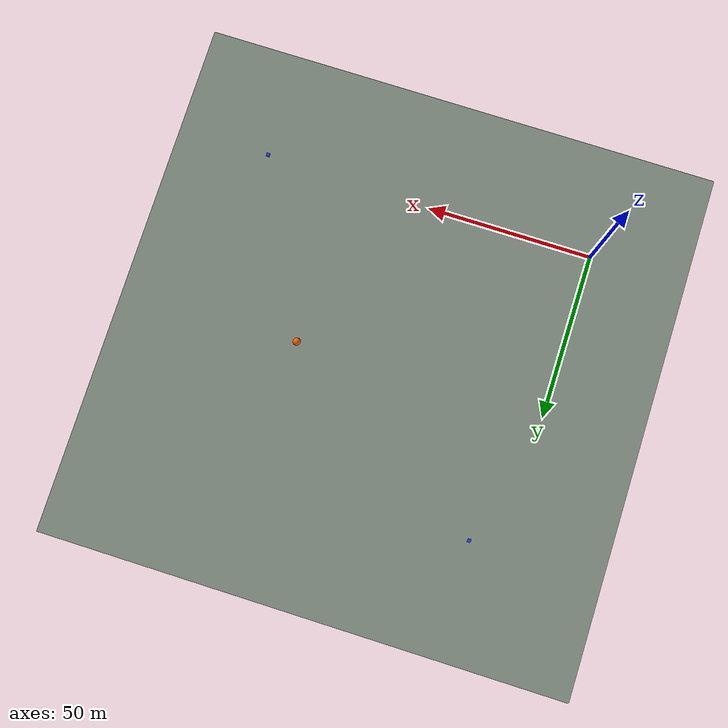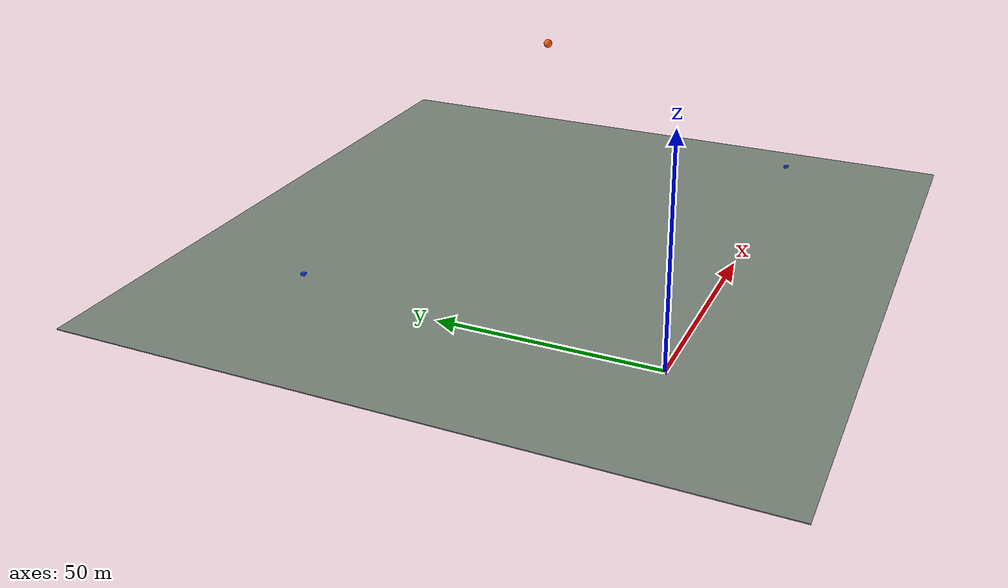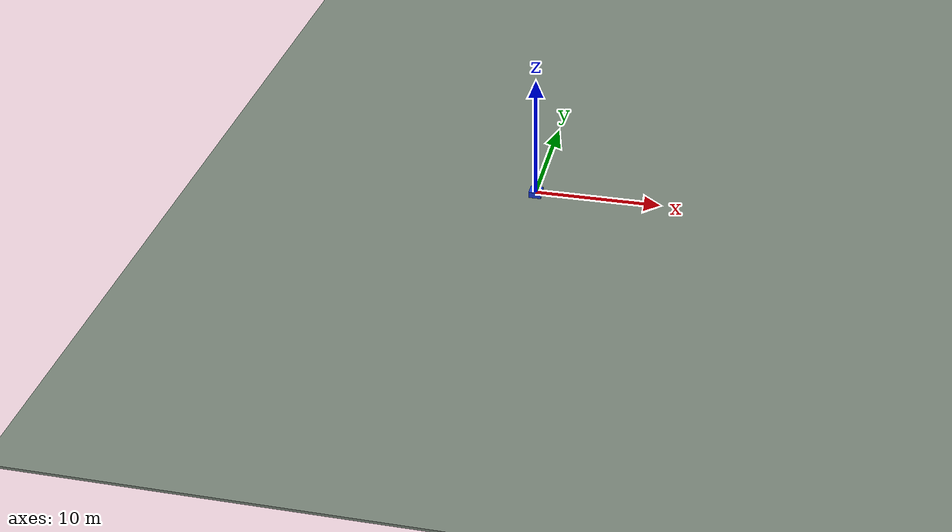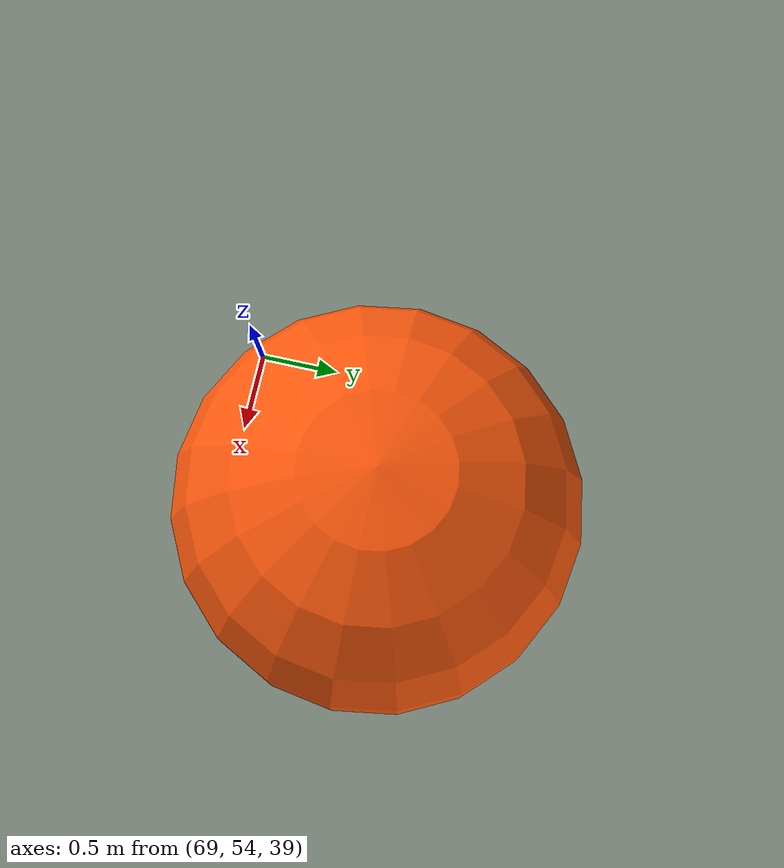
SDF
<?xml version='1.0' encoding='utf-8'?>
<sdf version="1.9">
  <world name="gazebo_offline">
    <physics name="fixed_step" type="ignored">
      <max_step_size>0.001</max_step_size>
      <real_time_factor>1.0</real_time_factor>
    </physics>
    <plugin filename="gz-sim-physics-system" name="gz::sim::systems::Physics" />
    <plugin filename="gz-sim-user-commands-system" name="gz::sim::systems::UserCommands" />
    <plugin filename="gz-sim-scene-broadcaster-system" name="gz::sim::systems::SceneBroadcaster" />
    <light type="directional" name="sun">
      <pose>0 0 100 0 0 0</pose>
      <direction>-0.5 0.1 -0.9</direction>
    </light>
    <model name="ground">
      <static>true</static>
      <pose>50 45 -3.2 0 0 0</pose>
      <link name="body">
        <visual name="visible">
          <geometry>
            <box>
              <size>160 160 0.2</size>
            </box>
          </geometry>
          <material>
            <ambient>0.5 0.55 0.5 1</ambient>
            <diffuse>0.5 0.55 0.5 1</diffuse>
          </material>
        </visual>
      </link>
    </model>
    <model name="S0">
      <static>true</static>
      <pose>0.0 0.0 0.0 0.0 0.0 0.0</pose>
      <link name="body">
        <visual name="visible">
          <geometry>
            <box>
              <size>1 1 0.5</size>
            </box>
          </geometry>
          <material>
            <ambient>0.1 0.25 0.9 1</ambient>
            <diffuse>0.1 0.25 0.9 1</diffuse>
          </material>
        </visual>
      </link>
    </model>
    <model name="S1">
      <static>true</static>
      <pose>100.0 0.0 5.0 0.0 0.0 0.0</pose>
      <link name="body">
        <visual name="visible">
          <geometry>
            <box>
              <size>1 1 0.5</size>
            </box>
          </geometry>
          <material>
            <ambient>0.1 0.25 0.9 1</ambient>
            <diffuse>0.1 0.25 0.9 1</diffuse>
          </material>
        </visual>
      </link>
    </model>
    <model name="S2">
      <static>true</static>
      <pose>10.0 90.0 -2.0 0.0 0.0 0.0</pose>
      <link name="body">
        <visual name="visible">
          <geometry>
            <box>
              <size>1 1 0.5</size>
            </box>
          </geometry>
          <material>
            <ambient>0.1 0.25 0.9 1</ambient>
            <diffuse>0.1 0.25 0.9 1</diffuse>
          </material>
        </visual>
      </link>
    </model>
    <model name="sound_source">
      <static>false</static>
      <pose>70.0 55.0 40.0 0 0 0</pose>
      <link name="body">
        <gravity>false</gravity>
        <inertial>
          <mass>1</mass>
          <inertia>
            <ixx>0.4</ixx>
            <iyy>0.4</iyy>
            <izz>0.4</izz>
            <ixy>0</ixy>
            <ixz>0</ixz>
            <iyz>0</iyz>
          </inertia>
        </inertial>
        <visual name="visual">
          <geometry>
            <sphere>
              <radius>1.0</radius>
            </sphere>
          </geometry>
          <material>
            <ambient>1 0.35 0.05 1</ambient>
            <diffuse>1 0.35 0.05 1</diffuse>
          </material>
        </visual>
        <collision name="collision">
          <geometry>
            <sphere>
              <radius>1.0</radius>
            </sphere>
          </geometry>
        </collision>
      </link>
      <plugin filename="libgazebo_offline_motion.so" name="offline::MotionExport">
        <kind>constant_velocity</kind>
        <initial_position_m>70.0 55.0 40.0</initial_position_m>
        <initial_velocity_mps>7.0 -3.0 1.5</initial_velocity_mps>
        <turn_start_s>2.5</turn_start_s>
        <turn_end_s>3.5</turn_end_s>
        <turn_angle_rad>0.45</turn_angle_rad>
        <export_period_s>0.02</export_period_s>
        <output_csv>/home/leo/projects/diploma-gazebo/uav_acoustic_model/results/gazebo_offline/constant_velocity/gazebo_state.csv</output_csv>
      </plugin>
    </model>
  </world>
</sdf>
